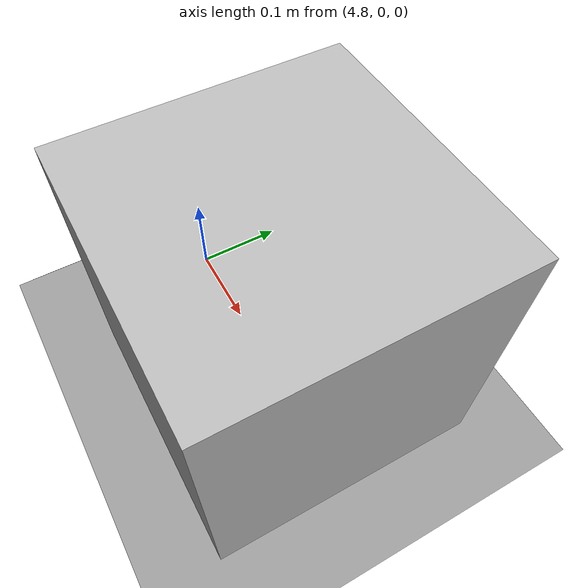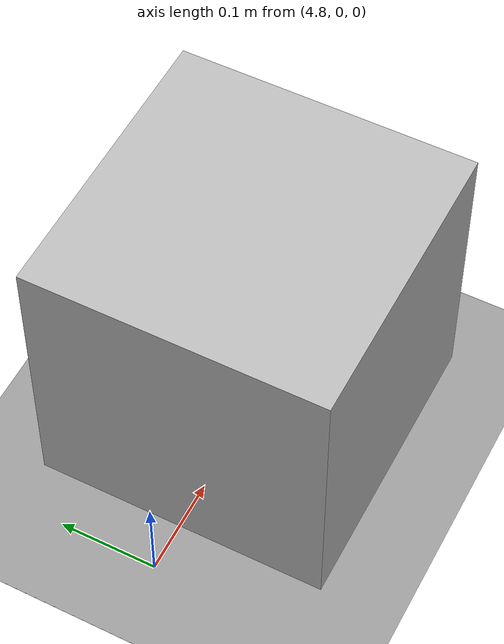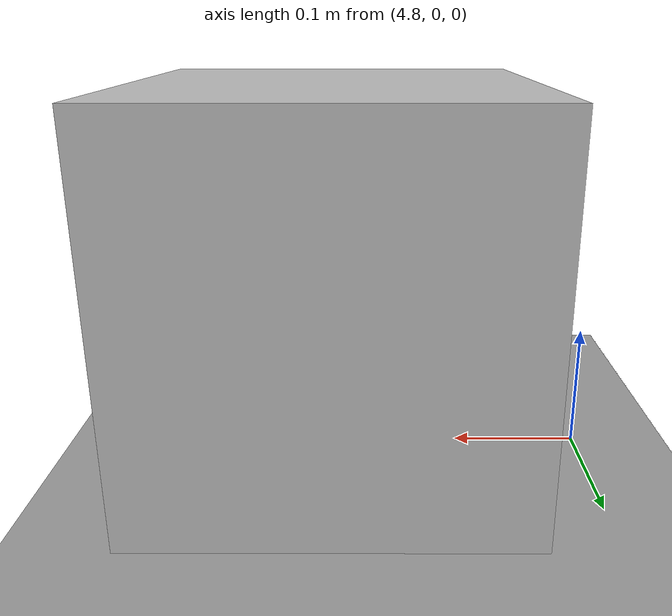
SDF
<?xml version="1.0" ?>
<sdf version="1.5">
  <world name="default">
    <include>
      <uri>model://ground_plane</uri>
    </include>
    <include>
      <uri>model://sun</uri>
    </include>

    <!-- Simple road network -->
    <model name="road">
      <static>true</static>
      <link name="link">
        <collision name="collision">
          <geometry>
            <plane>
              <normal>0 0 1</normal>
              <size>20 20</size>
            </plane>
          </geometry>
          <surface>
            <friction>
              <ode>
                <mu>100</mu>
                <mu2>50</mu2>
              </ode>
            </friction>
          </surface>
        </collision>
        <visual name="visual">
          <cast_shadows>false</cast_shadows>
          <geometry>
            <plane>
              <normal>0 0 1</normal>
              <size>20 20</size>
            </plane>
          </geometry>
          <material>
            <script>
              <uri>file://media/materials/scripts/gazebo.material</uri>
              <name>Gazebo/Grey</name>
            </script>
          </material>
        </visual>
      </link>
    </model>

    <!-- Road markings -->
    <model name="road_marking">
      <static>true</static>
      <link name="link">
        <collision name="collision">
          <geometry>
            <plane>
              <normal>0 0 1</normal>
              <size>0.1 20</size>
            </plane>
          </geometry>
        </collision>
        <visual name="visual">
          <cast_shadows>false</cast_shadows>
          <geometry>
            <plane>
              <normal>0 0 1</normal>
              <size>0.1 20</size>
            </plane>
          </geometry>
          <material>
            <script>
              <uri>file://media/materials/scripts/gazebo.material</uri>
              <name>Gazebo/White</name>
            </script>
          </material>
        </visual>
      </link>
    </model>

    <!-- Dynamic Obstacle -->
    <include>
      <uri>model://dynamic_obstacle</uri>
      <name>dynamic_obstacle1</name>
      <pose>5 0 0.15 0 0 0</pose>
    </include>
  </world>
</sdf>

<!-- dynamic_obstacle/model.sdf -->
<sdf version="1.6">
    <model name="DynamicObstacle">
      <pose>0 0 0.15 0 0 0</pose>
      <link name="link">
	<gravity>1</gravity>
        <inertial>
	  <inertia>
	    <ixx>0.17</ixx>
            <ixy>0.00</ixy>
            <ixz>0.00</ixz>
            <iyy>0.17</iyy>
            <iyz>0.00</iyz>
            <izz>0.17</izz>
          </inertia>
          <mass>100</mass>
        </inertial>
        <kinematic>false</kinematic>
        <collision name="collision">
          <max_contacts>0</max_contacts>
          <geometry>
            <box>
              <size>0.3 0.3 0.3</size>
            </box>
          </geometry>
	  <surface>
            <friction>
              <ode>
                <mu>0.0</mu>
                <mu2>0.0</mu2>
              </ode>
            </friction>
            <bounce>
              <restitution_coefficient>0.0</restitution_coefficient>
              <threshold>0.0</threshold>
      	  </bounce>
	  <contact>
            <ode>
              <kp>2000000000</kp>
	      <kd>1</kd>
              <max_vel>2</max_vel>
              <min_depth>0.00</min_depth>
            </ode>
          </contact>
          </surface>
        </collision>
        <visual name="visual">
          <geometry>
            <box>
              <size>0.3 0.3 0.3</size>
            </box>
          </geometry>
        </visual>
      </link>
      <plugin name="random" filename="libRandomVelocityPlugin.so">
        <link>link</link>
        <initial_velocity>0 1 0</initial_velocity>
        <velocity_factor>0.9</velocity_factor>
        <update_period>5</update_period>
        <min_z>-5</min_z>
        <max_z>0</max_z>
      </plugin>
    </model>
</sdf>
